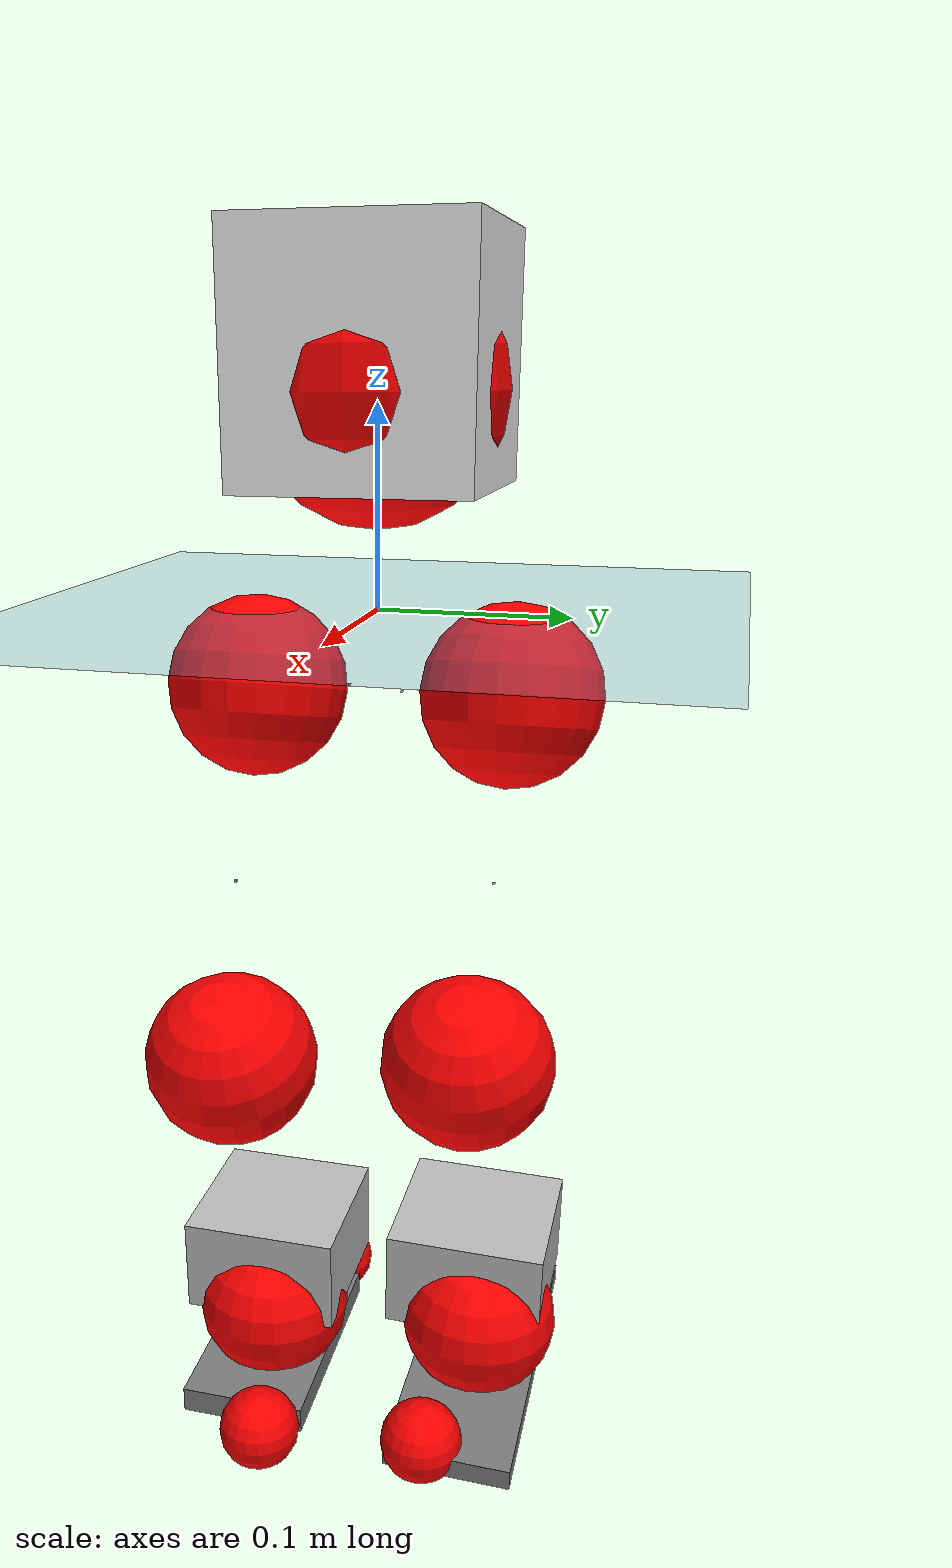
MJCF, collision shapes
<mujoco model="pi_12dof_release_v1">
  <compiler angle="radian" assetdir="assets" balanceinertia="true" inertiafromgeom="false"/>

  <option timestep="0.005" density="1.2" viscosity="2e-05"/>

  <size nkey="1"/>

  <visual>
    <quality shadowsize="8192"/>
    <map shadowclip="0.5"/>
  </visual>

  <default>
    <default class="/">
      <joint armature="0.01" damping="0.01" frictionloss="0.01"/>
      <geom contype="0" conaffinity="0" group="1" solref="-1000 -80"/>
      <site size="0.01 0.005 0.005" group="5"/>
      <general forcelimited="true" biastype="affine" gainprm="20" biasprm="0 -20 -0.5"/>
      <default class="foot">
        <geom size="0.0845 0.036 0.005" type="box" condim="6" group="4" priority="1" friction="0.9 0.2 0.2" solimp="0.015 1 0.005"/>
      </default>
      <default class="reward_collision_sphere">
        <geom group="5" rgba="1 0 0 1"/>
      </default>
    </default>
  </default>

  <asset>
    <texture type="skybox" colorspace="auto" name="//unnamed_texture_0" builtin="gradient" rgb1="0.95 0.95 0.95" rgb2="0.95 0.95 0.95" width="100" height="600"/>
    <texture type="2d" colorspace="auto" name="texplane" builtin="checker" rgb1="0.345 0.575 0.748" rgb2="0.345 0.575 0.748" markrgb="1 1 1" width="512" height="512"/>
    <material name="MatPlane" class="/" texture="texplane" texuniform="true" texrepeat="2 2" specular="0.9"/>
    <mesh name="baselink_1" class="/" file="baselink_1.STL"/>
    <mesh name="r_hip_pitch_link" class="/" file="r_hip_pitch_link.STL"/>
    <mesh name="r_hip_roll_link" class="/" file="r_hip_roll_link.STL"/>
    <mesh name="r_thigh_link" class="/" file="r_thigh_link.STL"/>
    <mesh name="r_calf_link" class="/" file="r_calf_link.STL"/>
    <mesh name="r_ankle_pitch_link" class="/" file="r_ankle_pitch_link.STL"/>
    <mesh name="r_ankle_roll_link" class="/" file="r_ankle_roll_link.STL"/>
    <mesh name="l_hip_pitch_link" class="/" file="l_hip_pitch_link.STL"/>
    <mesh name="l_hip_roll_link" class="/" file="l_hip_roll_link.STL"/>
    <mesh name="l_thigh_link" class="/" file="l_thigh_link.STL"/>
    <mesh name="l_calf_link" class="/" file="l_calf_link.STL"/>
    <mesh name="l_ankle_pitch_link" class="/" file="l_ankle_pitch_link.STL"/>
    <mesh name="l_ankle_roll_link" class="/" file="l_ankle_roll_link.STL"/>
  </asset>

  <worldbody>
    <geom name="floor" class="/" size="100 100 0.125" type="plane" group="0" material="MatPlane"/>
    <light name="toplight_shadow" class="/" pos="0 0 5" dir="0.0990148 0.0990148 -0.990148" type="directional" ambient="0.04 0.04 0.04" diffuse="0.55 0.55 0.55" specular="0.12 0.12 0.12"/>
    <light name="toplight_fill" class="/" pos="0 0 5" dir="0.0990148 0.0990148 -0.990148" type="directional" castshadow="false" ambient="0.04 0.04 0.04" diffuse="0.3 0.3 0.3" specular="0.08 0.08 0.08"/>
    <body name="trunk" pos="-0.000362227 -8.23637e-05 0.00617239" quat="1 0.000734968 -0.000453139 -0.000193481">
      <inertial pos="0.00477571 -0.00994427 0.0498865" quat="0.695422 0.00928874 0.00919392 0.718483" mass="3.81133" diaginertia="0.0333103 0.00456875 0.0241809"/>
      <joint name="//unnamed_joint_0" type="free"/>
      <geom name="//unnamed_geom_1" class="/" type="mesh" density="0" rgba="1 1 1 1" mesh="baselink_1"/>
      <geom name="//unnamed_geom_2" class="/" size="0.0595827 0.0595827 0.0595827" pos="0 0 0.113304" type="box" rgba="1 1 1 1"/>
      <geom name="//unnamed_geom_3" class="reward_collision_sphere" size="0.065541" pos="0 0 0.0991406"/>
      <site name="imu" class="/" pos="-0.00896212 0.0210201 -0.0107101" size="0.0119165"/>
      <camera name="track" class="/" pos="0 -1.72506 0" quat="0.707107 0.707107 0 0" mode="trackcom"/>
      <camera name="ego_camera" class="/" pos="0.0972105 0 0.254933" quat="-0.5 -0.5 0.5 0.5"/>
      <body name="r_hip_pitch_link" pos="0.000990322 -0.0148813 -0.0457656" quat="0.992197 0.000201617 -0.124681 -0.000282245">
        <inertial pos="0.00947672 -0.0503236 0.00349527" quat="-0.0213085 0.707344 -0.0258606 0.706075" mass="0.640665" diaginertia="0.000400387 4.9831e-05 0.000453238"/>
        <joint name="r_hip_pitch_joint" class="/" pos="0 0 0" axis="0.0340994 -0.998763 0.0361871" range="-1.75801 1.36431" armature="0.0145483" damping="0.0296006" frictionloss="0.0159251"/>
        <geom name="//unnamed_geom_4" class="/" type="mesh" density="0" rgba="0.75294 0.75294 0.75294 1" mesh="r_hip_pitch_link"/>
        <geom name="//unnamed_geom_5" class="/" size="0.000595827 0.000595827 0.000595827" type="box" rgba="0.75294 0.75294 0.75294 1"/>
        <body name="r_hip_roll_link" pos="0.00348185 -0.0491891 -0.00314584" quat="1 -0.000196248 0.000178853 0.000138191">
          <inertial pos="-0.0024271 -0.00254375 -0.0819902" quat="0.703511 -0.0785132 -0.090847 0.700467" mass="0.724325" diaginertia="0.0011929 0.000134219 0.000920345"/>
          <joint name="r_hip_roll_joint" class="/" pos="0 0 0" axis="-0.999417 -0.0341095 0.00146824" stiffness="0.015088" range="-0.125467 0.467434" armature="0.0115312" damping="0.0669648" frictionloss="0.00927929"/>
          <geom name="//unnamed_geom_6" class="/" type="mesh" density="0" rgba="0.75294 0.75294 0.75294 1" mesh="r_hip_roll_link"/>
          <geom name="//unnamed_geom_7" class="/" size="0.000595827 0.000595827 0.000595827" type="box" rgba="0.75294 0.75294 0.75294 1"/>
          <geom name="//unnamed_geom_8" class="reward_collision_sphere" size="0.0476662"/>
          <body name="r_thigh_link" pos="0.00300028 -0.00590445 -0.105091" quat="0.999989 -0.00197145 -0.000224154 0.0042506">
            <inertial pos="-0.00108519 0.000958059 -0.0694986" quat="0.737729 0.675095 0.000540943 -0.0015258" mass="0.211704" diaginertia="0.00045234 4.69281e-05 0.000364514"/>
            <joint name="r_thigh_joint" class="/" pos="0 0 0" axis="0.00568299 -0.000834354 -0.999984" range="-0.297559 0.715686" armature="0.00723783" damping="0.00158871" frictionloss="0.0128758"/>
            <geom name="//unnamed_geom_9" class="/" type="mesh" density="0" rgba="0.75294 0.75294 0.75294 1" mesh="r_thigh_link"/>
            <geom name="//unnamed_geom_10" class="/" size="0.000595827 0.000595827 0.000595827" type="box" rgba="0.75294 0.75294 0.75294 1"/>
            <body name="r_calf_link" pos="-0.0019791 0.00231333 -0.0986101" quat="0.946982 0.00234172 0.321271 -0.00216889">
              <inertial pos="-0.0028452 -0.0002086 -0.0992936" quat="0.999995 0.00240166 -0.000123191 0.00223733" mass="1.50577" diaginertia="0.014027 0.0019393 0.000980718"/>
              <joint name="r_calf_joint" class="/" pos="0 0 0" axis="-0.0312286 -0.998437 0.0463569" range="-1.59302 0.65324" armature="0.0123348" damping="0.0113189" frictionloss="0.0125291"/>
              <geom name="//unnamed_geom_11" class="/" type="mesh" density="0" rgba="0.75294 0.75294 0.75294 1" mesh="r_calf_link"/>
              <geom name="//unnamed_geom_12" class="/" size="0.000595827 0.000595827 0.000595827" type="box" rgba="0.75294 0.75294 0.75294 1"/>
              <geom name="//unnamed_geom_13" class="reward_collision_sphere" size="0.0476662"/>
              <body name="r_ankle_pitch_link" pos="-0.0108593 -0.00432389 -0.196956" quat="0.980076 -3.82081e-05 -0.198623 0.000589316">
                <inertial pos="0.00735251 0.00216885 5.02579e-07" quat="0.00359404 0.71019 -0.00491393 0.703984" mass="0.268039" diaginertia="0.00108369 9.44737e-05 0.000589419"/>
                <joint name="r_ankle_pitch_joint" class="/" pos="0 0 0" axis="-0.0113907 -0.999858 -0.0124504" stiffness="0.0152585" range="-1.19134 0.443029" armature="0.0115916" damping="0" frictionloss="0.00711012"/>
                <geom name="//unnamed_geom_14" class="/" type="mesh" density="0" rgba="0.75294 0.75294 0.75294 1" mesh="r_ankle_pitch_link"/>
                <geom name="//unnamed_geom_15" class="/" size="0.0464745 0.0476662 0.0297914" type="box" rgba="0.75294 0.75294 0.75294 1"/>
                <body name="r_ankle_roll_link" pos="0.0877606 0.00240041 -0.00417776" quat="1 -7.37741e-05 4.00404e-05 4.01392e-06">
                  <inertial pos="-0.0285356 0.000464173 -0.0310441" quat="0.56039 0.43506 0.431483 0.557232" mass="1.01765" diaginertia="0.00394529 0.000487412 0.00159826"/>
                  <joint name="r_ankle_roll_joint" class="/" pos="0 0 0" axis="-0.999948 -0.00346187 0.00955092" range="-0.12973 0.142877" armature="0.0116284" damping="0.00375329" frictionloss="0.00537985"/>
                  <geom name="//unnamed_geom_16" class="/" type="mesh" density="0" rgba="0.75294 0.75294 0.75294 1" mesh="r_ankle_roll_link"/>
                  <geom name="//unnamed_geom_17" class="/" type="mesh" rgba="0.75294 0.75294 0.75294 1" mesh="r_ankle_roll_link"/>
                  <geom name="right_foot" class="foot" size="0.0690743 0.0379481 0.007893" pos="-0.0661031 0 -0.062317"/>
                  <geom name="//unnamed_geom_19" class="reward_collision_sphere" size="0.0476662" pos="-0.064807 0 -0.0283259"/>
                  <geom name="//unnamed_geom_20" class="reward_collision_sphere" size="0.0238331" pos="0.0194421 0.0172506 -0.0566518"/>
                  <geom name="//unnamed_geom_21" class="reward_collision_sphere" size="0.0238331" pos="-0.155537 0.0172506 -0.0566518"/>
                  <site name="right_foot" class="foot" pos="-0.0661031 0 -0.062317" size="0.0119165"/>
                </body>
              </body>
            </body>
          </body>
        </body>
      </body>
      <body name="l_hip_pitch_link" pos="0.000558922 0.0135231 -0.0477241" quat="0.992195 -0.000416224 -0.124697 0.000283103">
        <inertial pos="0.00465767 0.0549589 0.000153781" quat="0.00553779 0.732743 0.0177858 0.680251" mass="0.755187" diaginertia="0.000459639 4.67775e-05 0.000595618"/>
        <joint name="l_hip_pitch_joint" class="/" pos="0 0 0" axis="-0.00750267 0.999883 -0.0133612" range="-1.39164 1.93618" armature="0.00880102" damping="0" frictionloss="0.0165976"/>
        <geom name="//unnamed_geom_22" class="/" type="mesh" density="0" rgba="0.75294 0.75294 0.75294 1" mesh="l_hip_pitch_link"/>
        <geom name="//unnamed_geom_23" class="/" size="0.000595827 0.000595827 0.000595827" type="box" rgba="0.75294 0.75294 0.75294 1"/>
        <body name="l_hip_roll_link" pos="-0.00244042 0.0571936 0.00082219" quat="0.999998 0.00132351 0.00101597 -0.000957681">
          <inertial pos="-0.001071 0.00617507 -0.0873485" quat="0.690971 -0.0747823 -0.0792681 0.714621" mass="0.633265" diaginertia="0.00106867 0.000122946 0.000616613"/>
          <joint name="l_hip_roll_joint" class="/" pos="0 0 0" axis="-0.999881 -0.015161 0.00282527" stiffness="0.0075768" range="-0.72528 0.307969" armature="0.011225" damping="0" frictionloss="0.0127067"/>
          <geom name="//unnamed_geom_24" class="/" type="mesh" density="0" rgba="0.75294 0.75294 0.75294 1" mesh="l_hip_roll_link"/>
          <geom name="//unnamed_geom_25" class="/" size="0.000595827 0.000595827 0.000595827" type="box" rgba="0.75294 0.75294 0.75294 1"/>
          <geom name="//unnamed_geom_26" class="reward_collision_sphere" size="0.0476662"/>
          <body name="l_thigh_link" pos="-0.00698656 -0.00324036 -0.0979474" quat="0.999993 -0.00303728 0.00157379 0.00176102">
            <inertial pos="-0.00705368 0.000574802 -0.0614961" quat="0.67489 0.737917 -0.0007806 -0.00111489" mass="0.179959" diaginertia="0.000395834 3.40584e-05 0.000239398"/>
            <joint name="l_thigh_joint" class="/" pos="0 0 0" axis="0.000637377 0.00344236 -0.999994" stiffness="0.00572336" range="-0.618769 0.457532" armature="0.0138016" damping="0" frictionloss="0.0156153"/>
            <geom name="//unnamed_geom_27" class="/" type="mesh" density="0" rgba="0.75294 0.75294 0.75294 1" mesh="l_thigh_link"/>
            <geom name="//unnamed_geom_28" class="/" size="0.000595827 0.000595827 0.000595827" type="box" rgba="0.75294 0.75294 0.75294 1"/>
            <body name="l_calf_link" pos="-0.00299487 -0.00702483 -0.0990135" quat="0.947376 -0.00401038 0.320098 -0.000831506">
              <inertial pos="0.000281131 -0.000307061 -0.0956838" quat="0.99852 -0.0023259 -0.052009 -0.0157249" mass="1.48622" diaginertia="0.0128885 0.00186429 0.00106473"/>
              <joint name="l_calf_joint" class="/" pos="0 0 0" axis="-0.00816507 0.999919 0.00975441" range="-0.656624 1.72098" armature="0.0108911" damping="0.00572182" frictionloss="0.015052"/>
              <geom name="//unnamed_geom_29" class="/" type="mesh" density="0" rgba="0.75294 0.75294 0.75294 1" mesh="l_calf_link"/>
              <geom name="//unnamed_geom_30" class="/" size="0.000595827 0.000595827 0.000595827" type="box" rgba="0.75294 0.75294 0.75294 1"/>
              <geom name="//unnamed_geom_31" class="reward_collision_sphere" size="0.0476662"/>
              <body name="l_ankle_pitch_link" pos="-3.61007e-05 -0.00207984 -0.188051" quat="0.980074 0.000106655 -0.198631 0.00058268">
                <inertial pos="0.00594385 -0.0122077 -0.00438865" quat="0.0223117 0.722732 0.0153079 0.690598" mass="0.337828" diaginertia="0.00125962 0.000118434 0.000767246"/>
                <joint name="l_ankle_pitch_joint" class="/" pos="0 0 0" axis="0.0461235 0.998834 0.0142823" range="-0.551862 1.33749" armature="0.0128827" damping="0.0432621" frictionloss="0.012109"/>
                <geom name="//unnamed_geom_32" class="/" type="mesh" density="0" rgba="0.75294 0.75294 0.75294 1" mesh="l_ankle_pitch_link"/>
                <geom name="//unnamed_geom_33" class="/" size="0.0464745 0.0476662 0.0297914" type="box" rgba="0.75294 0.75294 0.75294 1"/>
                <body name="l_ankle_roll_link" pos="0.0918217 0.00742351 -0.00187303" quat="0.999995 0.000895585 0.00227886 -0.00214332">
                  <inertial pos="-0.034387 -0.00233371 -0.0211065" quat="0.569178 0.399092 0.410326 0.590249" mass="1.02231" diaginertia="0.004342 0.000523192 0.00144482"/>
                  <joint name="l_ankle_roll_joint" class="/" pos="0 0 0" axis="-0.99837 0.0570758 -0.000139424" stiffness="0.0115079" range="-0.167773 0.388499" armature="0.0122716" damping="0.0129165" frictionloss="0.0186361"/>
                  <geom name="//unnamed_geom_34" class="/" type="mesh" density="0" rgba="0.75294 0.75294 0.75294 1" mesh="l_ankle_roll_link"/>
                  <geom name="//unnamed_geom_35" class="/" type="mesh" rgba="0.75294 0.75294 0.75294 1" mesh="l_ankle_roll_link"/>
                  <geom name="left_foot" class="foot" size="0.0972679 0.0371351 0.00619974" pos="-0.0661031 0 -0.062317"/>
                  <geom name="//unnamed_geom_37" class="reward_collision_sphere" size="0.0476662" pos="-0.064807 0 -0.0283259"/>
                  <geom name="//unnamed_geom_38" class="reward_collision_sphere" size="0.0238331" pos="0.0194421 -0.0172506 -0.0566518"/>
                  <geom name="//unnamed_geom_39" class="reward_collision_sphere" size="0.0238331" pos="-0.155537 -0.0172506 -0.0566518"/>
                  <site name="left_foot" class="foot" pos="-0.0661031 0 -0.062317" size="0.0119165"/>
                </body>
              </body>
            </body>
          </body>
        </body>
      </body>
    </body>
  </worldbody>

  <contact>
    <pair class="/" geom1="floor" geom2="right_foot" name="//unnamed_contact_1"/>
    <pair class="/" geom1="floor" geom2="left_foot" name="//unnamed_contact_0"/>
  </contact>

  <actuator>
    <general name="r_hip_pitch_joint" class="/" joint="r_hip_pitch_joint" forcerange="-30.8953 30.8953" gainprm="25.3885" biasprm="0 -25.3885 -0.601048"/>
    <general name="r_hip_roll_joint" class="/" joint="r_hip_roll_joint" forcerange="-25.1043 25.1043" gainprm="25.3885" biasprm="0 -25.3885 -0.601048"/>
    <general name="r_thigh_joint" class="/" joint="r_thigh_joint" forcerange="-29.7295 29.7295" gainprm="25.3885" biasprm="0 -25.3885 -0.601048"/>
    <general name="r_calf_joint" class="/" joint="r_calf_joint" forcerange="-23.401 23.401" gainprm="25.3885" biasprm="0 -25.3885 -0.601048"/>
    <general name="r_ankle_pitch_joint" class="/" joint="r_ankle_pitch_joint" forcerange="-20.044 20.044" gainprm="25.3885" biasprm="0 -25.3885 -0.601048"/>
    <general name="r_ankle_roll_joint" class="/" joint="r_ankle_roll_joint" forcerange="-16.4681 16.4681" gainprm="25.3885" biasprm="0 -25.3885 -0.601048"/>
    <general name="l_hip_pitch_joint" class="/" joint="l_hip_pitch_joint" forcerange="-29.0795 29.0795" gainprm="25.3885" biasprm="0 -25.3885 -0.601048"/>
    <general name="l_hip_roll_joint" class="/" joint="l_hip_roll_joint" forcerange="-35.5063 35.5063" gainprm="25.3885" biasprm="0 -25.3885 -0.601048"/>
    <general name="l_thigh_joint" class="/" joint="l_thigh_joint" forcerange="-24.4202 24.4202" gainprm="25.3885" biasprm="0 -25.3885 -0.601048"/>
    <general name="l_calf_joint" class="/" joint="l_calf_joint" forcerange="-26.1831 26.1831" gainprm="25.3885" biasprm="0 -25.3885 -0.601048"/>
    <general name="l_ankle_pitch_joint" class="/" joint="l_ankle_pitch_joint" forcerange="-23.288 23.288" gainprm="25.3885" biasprm="0 -25.3885 -0.601048"/>
    <general name="l_ankle_roll_joint" class="/" joint="l_ankle_roll_joint" forcerange="-28.0483 28.0483" gainprm="25.3885" biasprm="0 -25.3885 -0.601048"/>
  </actuator>

  <sensor>
    <gyro site="imu" name="imu_angular_velocity"/>
    <velocimeter site="imu" name="imu_linear_velocity"/>
    <framelinvel objtype="site" objname="left_foot" name="left_foot_global_linear_velocity"/>
    <framelinvel objtype="site" objname="right_foot" name="right_foot_global_linear_velocity"/>
  </sensor>

  <keyframe>
    <key name="home" qpos="0 0 0.291 1 0 0 0 0.4 0 0 -0.8 0.4 0 -0.4 0 0 0.8 -0.4 0"/>
  </keyframe>
</mujoco>
